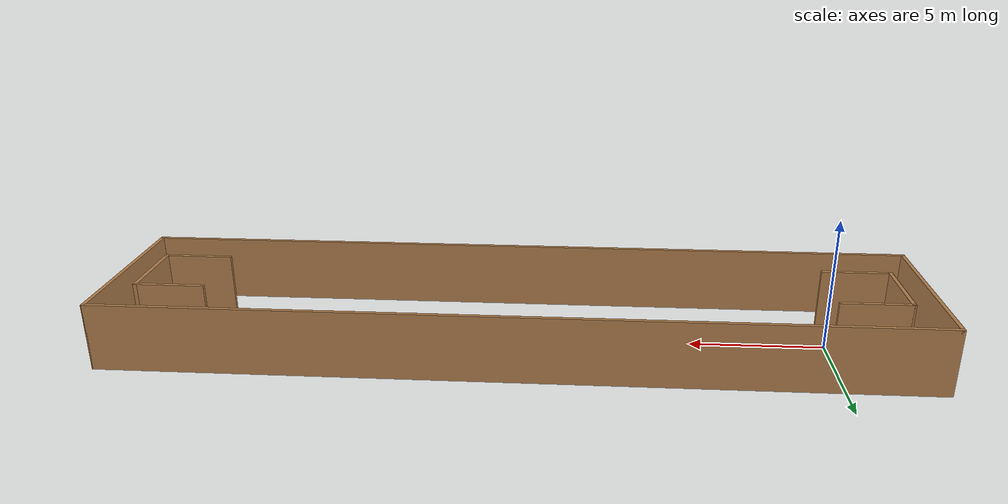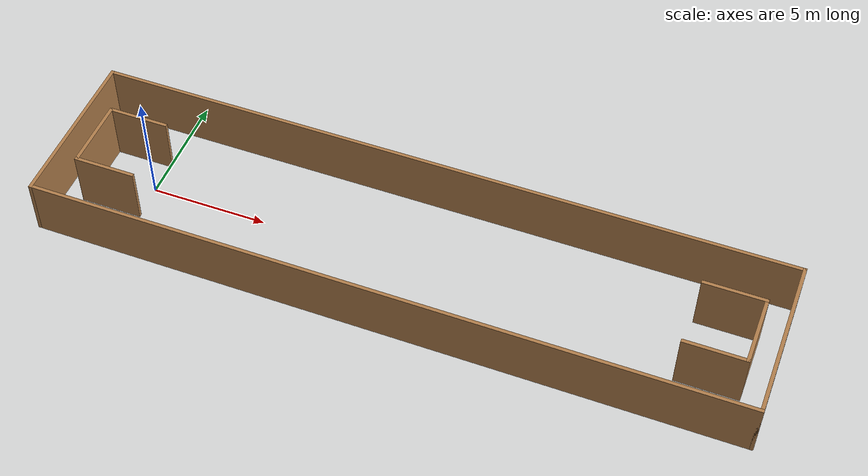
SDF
<?xml version='1.0'?>
<sdf version='1.7'>
  <model name='koridor'>
    <pose>11.5 0 0 0 -0 0</pose>
    <link name='Wall_0'>
      <collision name='Wall_0_Collision'>
        <geometry>
          <box>
            <size>7.15 0.15 2.5</size>
          </box>
        </geometry>
        <pose>0 0 1.25 0 -0 0</pose>
      </collision>
      <visual name='Wall_0_Visual'>
        <pose>0 0 1.25 0 -0 0</pose>
        <geometry>
          <box>
            <size>7.15 0.15 2.5</size>
          </box>
        </geometry>
        <material>
          <script>
            <uri>file://media/materials/scripts/gazebo.material</uri>
            <name>Gazebo/Wood</name>
          </script>
          <ambient>1 1 1 1</ambient>
        </material>
        <meta>
          <layer>0</layer>
        </meta>
      </visual>
      <pose>-15 0 0 0 -0 1.5708</pose>
    </link>
    <link name='Wall_10'>
      <collision name='Wall_10_Collision'>
        <geometry>
          <box>
            <size>2.65 0.15 2.5</size>
          </box>
        </geometry>
        <pose>0 0 1.25 0 -0 0</pose>
      </collision>
      <visual name='Wall_10_Visual'>
        <pose>0 0 1.25 0 -0 0</pose>
        <geometry>
          <box>
            <size>2.65 0.15 2.5</size>
          </box>
        </geometry>
        <material>
          <script>
            <uri>file://media/materials/scripts/gazebo.material</uri>
            <name>Gazebo/Wood</name>
          </script>
          <ambient>1 1 1 1</ambient>
        </material>
        <meta>
          <layer>0</layer>
        </meta>
      </visual>
      <pose>-12.75 -1.5 0 0 -0 0</pose>
    </link>
    <link name='Wall_12'>
      <collision name='Wall_12_Collision'>
        <geometry>
          <box>
            <size>2.65 0.15 2.5</size>
          </box>
        </geometry>
        <pose>0 0 1.25 0 -0 0</pose>
      </collision>
      <visual name='Wall_12_Visual'>
        <pose>0 0 1.25 0 -0 0</pose>
        <geometry>
          <box>
            <size>2.65 0.15 2.5</size>
          </box>
        </geometry>
        <material>
          <script>
            <uri>file://media/materials/scripts/gazebo.material</uri>
            <name>Gazebo/Wood</name>
          </script>
          <ambient>1 1 1 1</ambient>
        </material>
        <meta>
          <layer>0</layer>
        </meta>
      </visual>
      <pose>-12.75 1.5 0 0 -0 0</pose>
    </link>
    <link name='Wall_14'>
      <collision name='Wall_14_Collision'>
        <geometry>
          <box>
            <size>3.15 0.15 2.5</size>
          </box>
        </geometry>
        <pose>0 0 1.25 0 -0 0</pose>
      </collision>
      <visual name='Wall_14_Visual'>
        <pose>0 0 1.25 0 -0 0</pose>
        <geometry>
          <box>
            <size>3.15 0.15 2.5</size>
          </box>
        </geometry>
        <material>
          <script>
            <uri>file://media/materials/scripts/gazebo.material</uri>
            <name>Gazebo/Wood</name>
          </script>
          <ambient>1 1 1 1</ambient>
        </material>
        <meta>
          <layer>0</layer>
        </meta>
      </visual>
      <pose>14 0 0 0 -0 -1.5708</pose>
    </link>
    <link name='Wall_15'>
      <collision name='Wall_15_Collision'>
        <geometry>
          <box>
            <size>2.65 0.15 2.5</size>
          </box>
        </geometry>
        <pose>0 0 1.25 0 -0 0</pose>
      </collision>
      <visual name='Wall_15_Visual'>
        <pose>0 0 1.25 0 -0 0</pose>
        <geometry>
          <box>
            <size>2.65 0.15 2.5</size>
          </box>
        </geometry>
        <material>
          <script>
            <uri>file://media/materials/scripts/gazebo.material</uri>
            <name>Gazebo/Wood</name>
          </script>
          <ambient>1 1 1 1</ambient>
        </material>
        <meta>
          <layer>0</layer>
        </meta>
      </visual>
      <pose>12.75 -1.5 0 0 -0 3.14159</pose>
    </link>
    <link name='Wall_17'>
      <collision name='Wall_17_Collision'>
        <geometry>
          <box>
            <size>2.65 0.15 2.5</size>
          </box>
        </geometry>
        <pose>0 0 1.25 0 -0 0</pose>
      </collision>
      <visual name='Wall_17_Visual'>
        <pose>0 0 1.25 0 -0 0</pose>
        <geometry>
          <box>
            <size>2.65 0.15 2.5</size>
          </box>
        </geometry>
        <material>
          <script>
            <uri>file://media/materials/scripts/gazebo.material</uri>
            <name>Gazebo/Wood</name>
          </script>
          <ambient>1 1 1 1</ambient>
        </material>
        <meta>
          <layer>0</layer>
        </meta>
      </visual>
      <pose>12.75 1.5 0 0 -0 3.14159</pose>
    </link>
    <link name='Wall_2'>
      <collision name='Wall_2_Collision'>
        <geometry>
          <box>
            <size>30.15 0.15 2.5</size>
          </box>
        </geometry>
        <pose>0 0 1.25 0 -0 0</pose>
      </collision>
      <visual name='Wall_2_Visual'>
        <pose>0 0 1.25 0 -0 0</pose>
        <geometry>
          <box>
            <size>30.15 0.15 2.5</size>
          </box>
        </geometry>
        <material>
          <script>
            <uri>file://media/materials/scripts/gazebo.material</uri>
            <name>Gazebo/Wood</name>
          </script>
          <ambient>1 1 1 1</ambient>
        </material>
        <meta>
          <layer>0</layer>
        </meta>
      </visual>
      <pose>-0 -3.5 0 0 -0 0</pose>
    </link>
    <link name='Wall_4'>
      <collision name='Wall_4_Collision'>
        <geometry>
          <box>
            <size>30.15 0.15 2.5</size>
          </box>
        </geometry>
        <pose>0 0 1.25 0 -0 0</pose>
      </collision>
      <visual name='Wall_4_Visual'>
        <pose>0 0 1.25 0 -0 0</pose>
        <geometry>
          <box>
            <size>30.15 0.15 2.5</size>
          </box>
        </geometry>
        <material>
          <script>
            <uri>file://media/materials/scripts/gazebo.material</uri>
            <name>Gazebo/Wood</name>
          </script>
          <ambient>1 1 1 1</ambient>
        </material>
        <meta>
          <layer>0</layer>
        </meta>
      </visual>
      <pose>-0 3.5 0 0 -0 0</pose>
    </link>
    <link name='Wall_6'>
      <collision name='Wall_6_Collision'>
        <geometry>
          <box>
            <size>7.15 0.15 2.5</size>
          </box>
        </geometry>
        <pose>0 0 1.25 0 -0 0</pose>
      </collision>
      <visual name='Wall_6_Visual'>
        <pose>0 0 1.25 0 -0 0</pose>
        <geometry>
          <box>
            <size>7.15 0.15 2.5</size>
          </box>
        </geometry>
        <material>
          <script>
            <uri>file://media/materials/scripts/gazebo.material</uri>
            <name>Gazebo/Wood</name>
          </script>
          <ambient>1 1 1 1</ambient>
        </material>
        <meta>
          <layer>0</layer>
        </meta>
      </visual>
      <pose>15 0 0 0 -0 -1.5708</pose>
    </link>
    <link name='Wall_9'>
      <collision name='Wall_9_Collision'>
        <geometry>
          <box>
            <size>3.15 0.15 2.5</size>
          </box>
        </geometry>
        <pose>0 0 1.25 0 -0 0</pose>
      </collision>
      <visual name='Wall_9_Visual'>
        <pose>0 0 1.25 0 -0 0</pose>
        <geometry>
          <box>
            <size>3.15 0.15 2.5</size>
          </box>
        </geometry>
        <material>
          <script>
            <uri>file://media/materials/scripts/gazebo.material</uri>
            <name>Gazebo/Wood</name>
          </script>
          <ambient>1 1 1 1</ambient>
        </material>
        <meta>
          <layer>0</layer>
        </meta>
      </visual>
      <pose>-14 0 0 0 -0 -1.5708</pose>
    </link>
    <static>1</static>
  </model>
</sdf>
